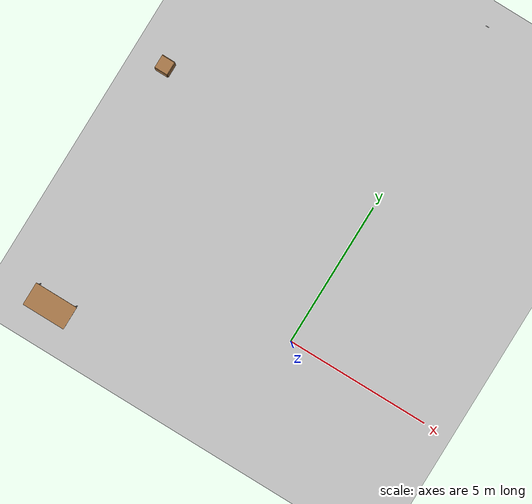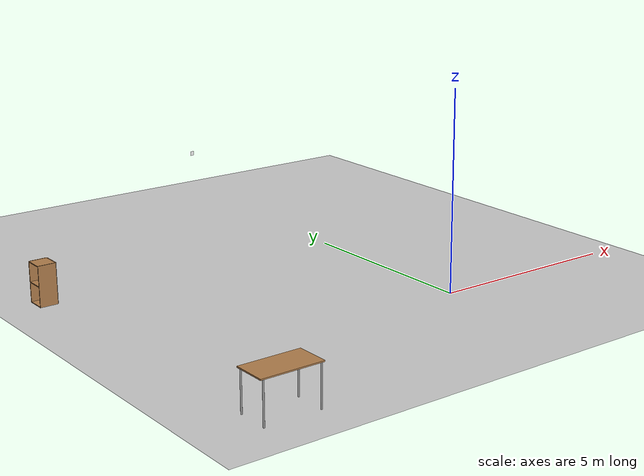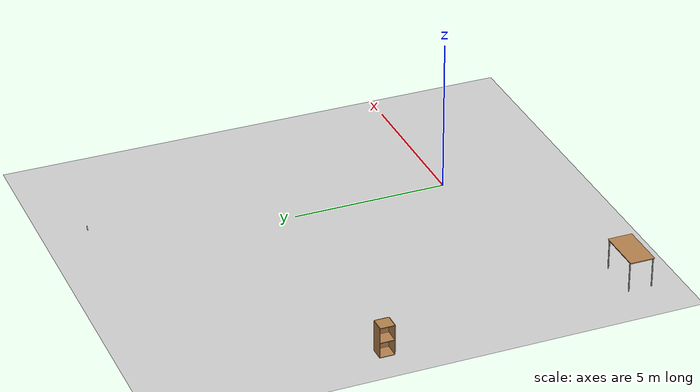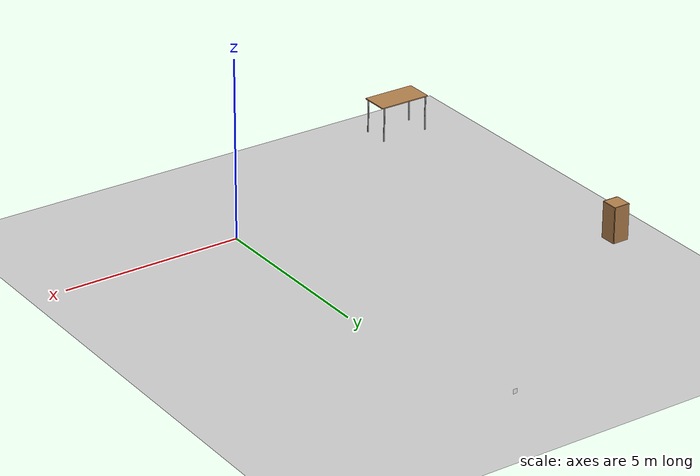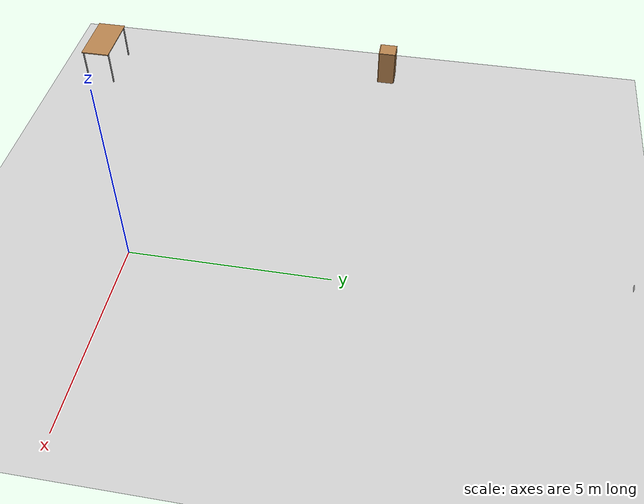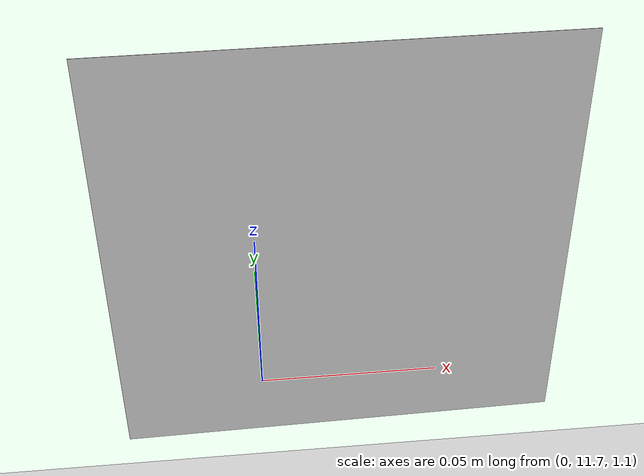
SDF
<sdf version="1.6">
 <world name="default">
  <light name="sun" type="directional">
   <pose>0 0 10 0 -0 0</pose>
   <diffuse>0.8 0.8 0.8 1</diffuse>
   <specular>0.2 0.2 0.2 1</specular>
   <attenuation>
    <range>1000</range>
    <constant>0.9</constant>
    <linear>0.01</linear>
    <quadratic>0.001</quadratic>
   </attenuation>
   <direction>-0.5 0.1 -0.9</direction>
  </light>
  <model name="ground_plane">
   <static>1</static>
   <link name="link">
    <collision name="collision">
     <geometry><plane><normal>0 0 1</normal><size>100 100</size></plane></geometry>
     <surface>
      <contact><collide_bitmask>65535</collide_bitmask></contact>
      <friction><ode><mu>100</mu><mu2>50</mu2></ode></friction>
     </surface>
    </collision>
    <visual name="visual">
     <cast_shadows>0</cast_shadows>
     <geometry><plane><normal>0 0 1</normal><size>100 100</size></plane></geometry>
     <material>
      <script><uri>file://media/materials/scripts/gazebo.material</uri><name>Gazebo/Grey</name></script>
     </material>
    </visual>
   </link>
  </model>
  <gravity>0 0 -9.8</gravity>
  <magnetic_field>6e-06 2.3e-05 -4.2e-05</magnetic_field>
  <atmosphere type="adiabatic"/>
  <physics name="default_physics" default="0" type="ode">
   <max_step_size>0.001</max_step_size>
   <real_time_factor>1</real_time_factor>
   <real_time_update_rate>1000</real_time_update_rate>
  </physics>
  <scene><ambient>0.4 0.4 0.4 1</ambient><background>0.7 0.7 0.7 1</background><shadows>1</shadows></scene>
  <audio><device>default</device></audio>
  <spherical_coordinates>
   <surface_model>EARTH_WGS84</surface_model>
   <latitude_deg>0</latitude_deg>
   <longitude_deg>0</longitude_deg>
   <elevation>0</elevation>
   <heading_deg>0</heading_deg>
  </spherical_coordinates>
  <model name="cabinet_clone">
   <static>1</static>
   <link name="cabinet_bottom_plate">
    <inertial>
     <pose>0 0 -1 0 -0 0</pose>
     <inertia><ixx>2.05</ixx><ixy>0</ixy><ixz>0</ixz><iyy>2.05</iyy><iyz>0</iyz><izz>2.05</izz></inertia>
     <mass>25</mass>
    </inertial>
    <collision name="cabinet_bottom_plate_geom">
     <pose>0 0 0.01 0 -0 0</pose>
     <geometry><box><size>0.45 0.45 0.02</size></box></geometry>
    </collision>
    <visual name="cabinet_bottom_plate_geom_visual">
     <pose>0 0 0.01 0 -0 0</pose>
     <geometry><box><size>0.45 0.45 0.02</size></box></geometry>
     <material>
      <script><uri>file://media/materials/scripts/gazebo.material</uri><name>Gazebo/Wood</name></script>
     </material>
    </visual>
    <collision name="cabinet_bottom_plate_geom_cabinet_back_plate">
     <pose>0.235 0 0.51 0 -0 0</pose>
     <geometry><box><size>0.02 0.45 1.02</size></box></geometry>
    </collision>
    <visual name="cabinet_bottom_plate_geom_cabinet_back_plate_visual">
     <pose>0.235 0 0.51 0 -0 0</pose>
     <geometry><box><size>0.02 0.45 1.02</size></box></geometry>
     <material>
      <script><uri>file://media/materials/scripts/gazebo.material</uri><name>Gazebo/Wood</name></script>
     </material>
    </visual>
    <collision name="cabinet_bottom_plate_geom_cabinet_left_plate">
     <pose>0 0.235 0.51 0 -0 0</pose>
     <geometry><box><size>0.45 0.02 1.02</size></box></geometry>
    </collision>
    <visual name="cabinet_bottom_plate_geom_cabinet_left_plate_visual">
     <pose>0 0.235 0.51 0 -0 0</pose>
     <geometry><box><size>0.45 0.02 1.02</size></box></geometry>
     <material>
      <script><uri>file://media/materials/scripts/gazebo.material</uri><name>Gazebo/Wood</name></script>
     </material>
    </visual>
    <collision name="cabinet_bottom_plate_geom_cabinet_middle_plate">
     <pose>0 0 0.51 0 -0 0</pose>
     <geometry><box><size>0.45 0.45 0.02</size></box></geometry>
    </collision>
    <visual name="cabinet_bottom_plate_geom_cabinet_middle_plate_visual">
     <pose>0 0 0.51 0 -0 0</pose>
     <geometry><box><size>0.45 0.45 0.02</size></box></geometry>
     <material>
      <script><uri>file://media/materials/scripts/gazebo.material</uri><name>Gazebo/Wood</name></script>
     </material>
    </visual>
    <collision name="cabinet_bottom_plate_geom_cabinet_right_plate">
     <pose>0 -0.235 0.51 0 -0 0</pose>
     <geometry><box><size>0.45 0.02 1.02</size></box></geometry>
    </collision>
    <visual name="cabinet_bottom_plate_geom_cabinet_right_plate_visual">
     <pose>0 -0.235 0.51 0 -0 0</pose>
     <geometry><box><size>0.45 0.02 1.02</size></box></geometry>
     <material>
      <script><uri>file://media/materials/scripts/gazebo.material</uri><name>Gazebo/Wood</name></script>
     </material>
    </visual>
    <collision name="cabinet_bottom_plate_geom_cabinet_top_plate">
     <pose>0 0 1.01 0 -0 0</pose>
     <geometry><box><size>0.45 0.45 0.02</size></box></geometry>
    </collision>
    <visual name="cabinet_bottom_plate_geom_cabinet_top_plate_visual">
     <pose>0 0 1.01 0 -0 0</pose>
     <geometry><box><size>0.45 0.45 0.02</size></box></geometry>
     <material>
      <script><uri>file://media/materials/scripts/gazebo.material</uri><name>Gazebo/Wood</name></script>
     </material>
    </visual>
   </link>
   <pose>-7.9958 5.34177 0 0 -0 0</pose>
  </model>
  <model name="table_clone">
   <static>1</static>
   <link name="link">
    <collision name="surface">
     <pose>0 0 1 0 -0 0</pose>
     <geometry><box><size>1.5 0.8 0.03</size></box></geometry>
     <surface><friction><ode><mu>0.6</mu><mu2>0.6</mu2></ode></friction></surface>
    </collision>
    <visual name="visual1">
     <pose>0 0 1 0 -0 0</pose>
     <geometry><box><size>1.5 0.8 0.03</size></box></geometry>
     <material>
      <script><uri>file://media/materials/scripts/gazebo.material</uri><name>Gazebo/Wood</name></script>
     </material>
    </visual>
    <collision name="front_left_leg">
     <pose>0.68 0.38 0.5 0 -0 0</pose>
     <geometry><cylinder><radius>0.02</radius><length>1</length></cylinder></geometry>
    </collision>
    <visual name="front_left_leg">
     <pose>0.68 0.38 0.5 0 -0 0</pose>
     <geometry><cylinder><radius>0.02</radius><length>1</length></cylinder></geometry>
     <material>
      <script><uri>file://media/materials/scripts/gazebo.material</uri><name>Gazebo/Grey</name></script>
     </material>
    </visual>
    <collision name="front_right_leg">
     <pose>0.68 -0.38 0.5 0 -0 0</pose>
     <geometry><cylinder><radius>0.02</radius><length>1</length></cylinder></geometry>
    </collision>
    <visual name="front_right_leg">
     <pose>0.68 -0.38 0.5 0 -0 0</pose>
     <geometry><cylinder><radius>0.02</radius><length>1</length></cylinder></geometry>
     <material>
      <script><uri>file://media/materials/scripts/gazebo.material</uri><name>Gazebo/Grey</name></script>
     </material>
    </visual>
    <collision name="back_right_leg">
     <pose>-0.68 -0.38 0.5 0 -0 0</pose>
     <geometry><cylinder><radius>0.02</radius><length>1</length></cylinder></geometry>
    </collision>
    <visual name="back_right_leg">
     <pose>-0.68 -0.38 0.5 0 -0 0</pose>
     <geometry><cylinder><radius>0.02</radius><length>1</length></cylinder></geometry>
     <material>
      <script><uri>file://media/materials/scripts/gazebo.material</uri><name>Gazebo/Grey</name></script>
     </material>
    </visual>
    <collision name="back_left_leg">
     <pose>-0.68 0.38 0.5 0 -0 0</pose>
     <geometry><cylinder><radius>0.02</radius><length>1</length></cylinder></geometry>
    </collision>
    <visual name="back_left_leg">
     <pose>-0.68 0.38 0.5 0 -0 0</pose>
     <geometry><cylinder><radius>0.02</radius><length>1</length></cylinder></geometry>
     <material>
      <script><uri>file://media/materials/scripts/gazebo.material</uri><name>Gazebo/Grey</name></script>
     </material>
    </visual>
   </link>
   <pose>-7.07915 -3.01772 0 0 -0 0</pose>
  </model>
  <model name="artag">
   <link name="box">
    <gravity>0</gravity>
    <inertial>
     <mass>1000</mass>
     <inertia><ixx>1</ixx><ixy>0</ixy><ixz>0</ixz><iyy>1</iyy><iyz>0</iyz><izz>1</izz></inertia>
    </inertial>
    <visual name="visual">
     <geometry><box><size>0.12 0.000136 0.12</size></box></geometry>
     <material>
      <script>
       <uri>model://artag/materials/scripts</uri>
       <uri>model://artag/materials/textures</uri>
       <name>ar2020</name>
      </script>
      <shader type="vertex"><normal_map>__default__</normal_map></shader>
      <ambient>1 1 1 1</ambient>
      <diffuse>1 1 1 1</diffuse>
      <specular>0 0 0 1</specular>
      <emissive>0 0 0 1</emissive>
      <lighting>0</lighting>
     </material>
    </visual>
   </link>
   <static>0</static>
   <pose>0.021696 11.6914 1.15052 0 0 -3.12184</pose>
  </model>
 </world>
</sdf>
